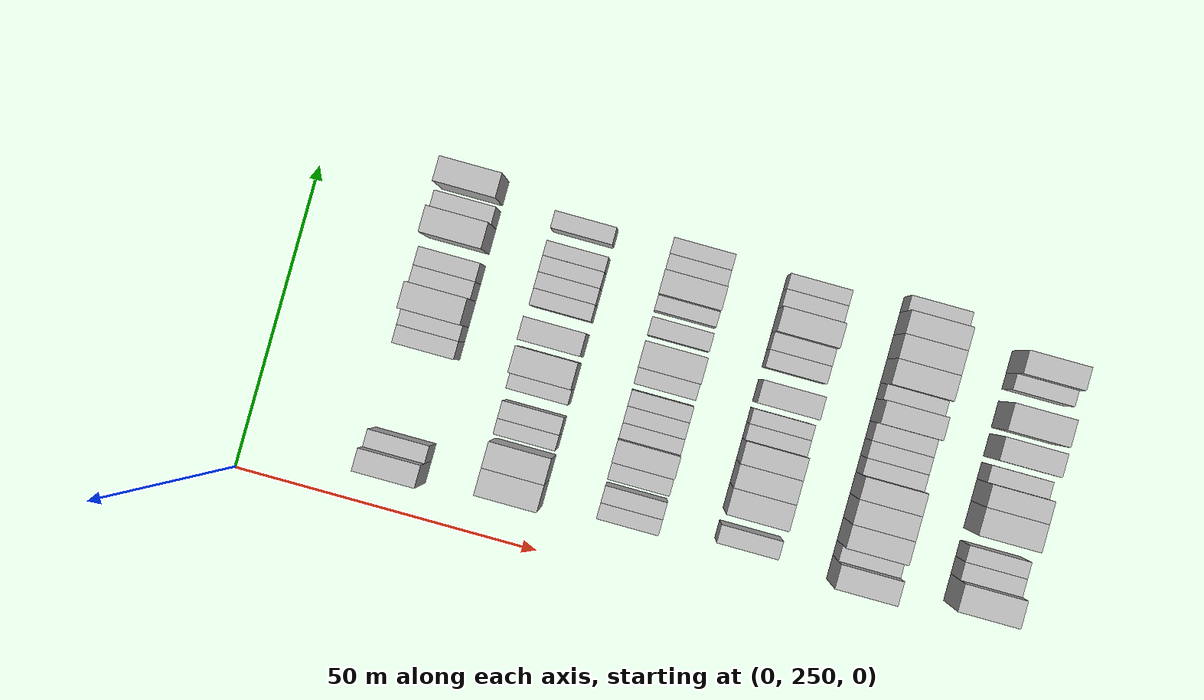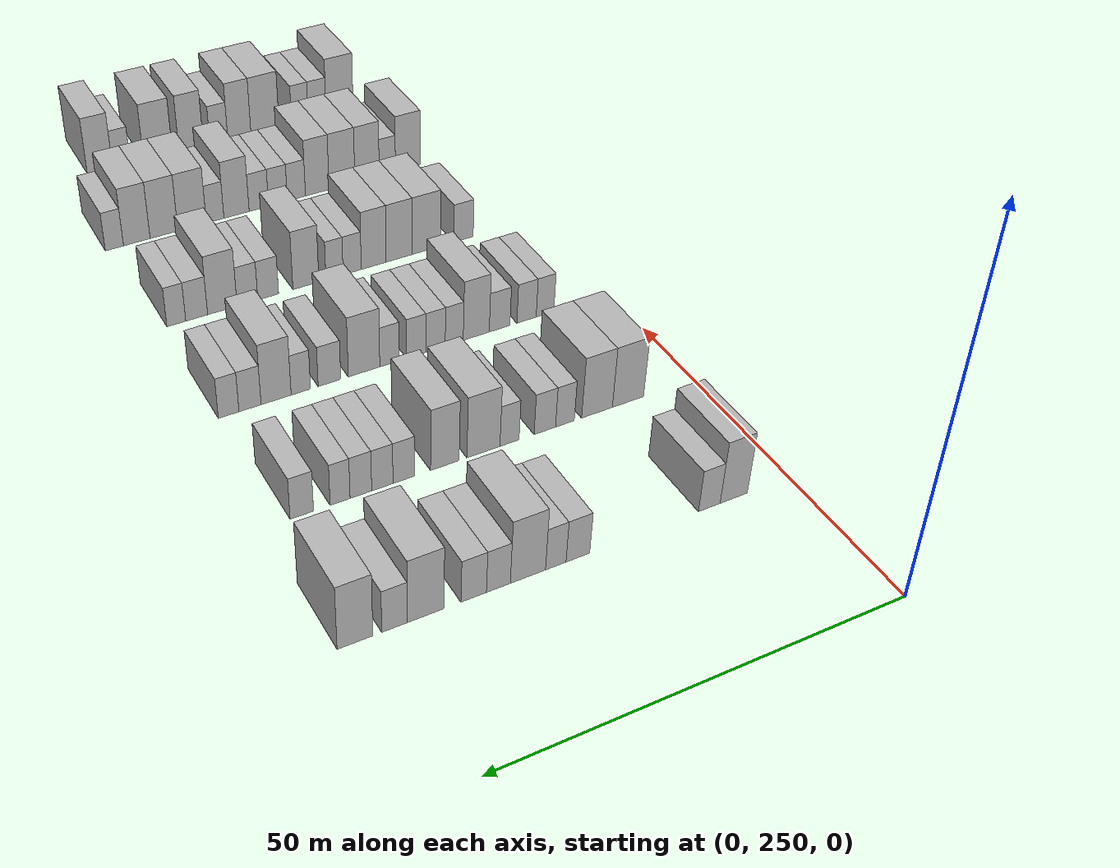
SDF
<sdf version="1.6">
 <world name="default">
  <model name="building_148">
   <static>1</static>
   <pose>25.0000 257.5015 0 0.000000 0.000000 0.000000</pose>
   <link name="link">
    <pose>0 0 4.50 0 0 0</pose>
    <collision name="collision"><geometry><box><size>10.0000 3.6492 9.0000</size></box></geometry></collision>
    <visual name="visual">
     <cast_shadows>0</cast_shadows>
     <geometry><box><size>10.0000 3.6492 9.0000</size></box></geometry>
     <material>
      <script>
       <uri>model://HANNAS_wall/materials/scripts</uri>
       <uri>model://HANNAS_wall/materials/textures</uri>
       <name>vrc/HANNAS_wall</name>
      </script>
     </material>
    </visual>
   </link>
  </model>
  <model name="building_149">
   <static>1</static>
   <pose>25.0000 260.7562 0 0.000000 0.000000 0.000000</pose>
   <link name="link">
    <pose>0 0 3.00 0 0 0</pose>
    <collision name="collision"><geometry><box><size>10.0000 2.8602 6.0000</size></box></geometry></collision>
    <visual name="visual">
     <cast_shadows>0</cast_shadows>
     <geometry><box><size>10.0000 2.8602 6.0000</size></box></geometry>
     <material>
      <script>
       <uri>model://HANNAS_wall/materials/scripts</uri>
       <uri>model://HANNAS_wall/materials/textures</uri>
       <name>vrc/HANNAS_wall</name>
      </script>
     </material>
    </visual>
   </link>
  </model>
  <model name="building_150">
   <static>1</static>
   <pose>25.0000 277.5762 0 0.000000 0.000000 0.000000</pose>
   <link name="link">
    <pose>0 0 3.00 0 0 0</pose>
    <collision name="collision"><geometry><box><size>10.0000 2.9266 6.0000</size></box></geometry></collision>
    <visual name="visual">
     <cast_shadows>0</cast_shadows>
     <geometry><box><size>10.0000 2.9266 6.0000</size></box></geometry>
     <material>
      <script>
       <uri>model://HANNAS_wall/materials/scripts</uri>
       <uri>model://HANNAS_wall/materials/textures</uri>
       <name>vrc/HANNAS_wall</name>
      </script>
     </material>
    </visual>
   </link>
  </model>
  <model name="building_151">
   <static>1</static>
   <pose>25.0000 280.2973 0 0.000000 0.000000 0.000000</pose>
   <link name="link">
    <pose>0 0 3.00 0 0 0</pose>
    <collision name="collision"><geometry><box><size>10.0000 2.5155 6.0000</size></box></geometry></collision>
    <visual name="visual">
     <cast_shadows>0</cast_shadows>
     <geometry><box><size>10.0000 2.5155 6.0000</size></box></geometry>
     <material>
      <script>
       <uri>model://HANNAS_wall/materials/scripts</uri>
       <uri>model://HANNAS_wall/materials/textures</uri>
       <name>vrc/HANNAS_wall</name>
      </script>
     </material>
    </visual>
   </link>
  </model>
  <model name="building_152">
   <static>1</static>
   <pose>25.0000 283.6808 0 0.000000 0.000000 0.000000</pose>
   <link name="link">
    <pose>0 0 4.50 0 0 0</pose>
    <collision name="collision"><geometry><box><size>10.0000 4.2517 9.0000</size></box></geometry></collision>
    <visual name="visual">
     <cast_shadows>0</cast_shadows>
     <geometry><box><size>10.0000 4.2517 9.0000</size></box></geometry>
     <material>
      <script>
       <uri>model://HANNAS_wall/materials/scripts</uri>
       <uri>model://HANNAS_wall/materials/textures</uri>
       <name>vrc/HANNAS_wall</name>
      </script>
     </material>
    </visual>
   </link>
  </model>
  <model name="building_153">
   <static>1</static>
   <pose>25.0000 287.2295 0 0.000000 0.000000 0.000000</pose>
   <link name="link">
    <pose>0 0 3.00 0 0 0</pose>
    <collision name="collision"><geometry><box><size>10.0000 2.8457 6.0000</size></box></geometry></collision>
    <visual name="visual">
     <cast_shadows>0</cast_shadows>
     <geometry><box><size>10.0000 2.8457 6.0000</size></box></geometry>
     <material>
      <script>
       <uri>model://HANNAS_wall/materials/scripts</uri>
       <uri>model://HANNAS_wall/materials/textures</uri>
       <name>vrc/HANNAS_wall</name>
      </script>
     </material>
    </visual>
   </link>
  </model>
  <model name="building_154">
   <static>1</static>
   <pose>25.0000 290.1488 0 0.000000 0.000000 0.000000</pose>
   <link name="link">
    <pose>0 0 3.00 0 0 0</pose>
    <collision name="collision"><geometry><box><size>10.0000 2.9929 6.0000</size></box></geometry></collision>
    <visual name="visual">
     <cast_shadows>0</cast_shadows>
     <geometry><box><size>10.0000 2.9929 6.0000</size></box></geometry>
     <material>
      <script>
       <uri>model://HANNAS_wall/materials/scripts</uri>
       <uri>model://HANNAS_wall/materials/textures</uri>
       <name>vrc/HANNAS_wall</name>
      </script>
     </material>
    </visual>
   </link>
  </model>
  <model name="building_155">
   <static>1</static>
   <pose>25.0000 295.7564 0 0.000000 0.000000 0.000000</pose>
   <link name="link">
    <pose>0 0 4.50 0 0 0</pose>
    <collision name="collision"><geometry><box><size>10.0000 4.2221 9.0000</size></box></geometry></collision>
    <visual name="visual">
     <cast_shadows>0</cast_shadows>
     <geometry><box><size>10.0000 4.2221 9.0000</size></box></geometry>
     <material>
      <script>
       <uri>model://HANNAS_wall/materials/scripts</uri>
       <uri>model://HANNAS_wall/materials/textures</uri>
       <name>vrc/HANNAS_wall</name>
      </script>
     </material>
    </visual>
   </link>
  </model>
  <model name="building_156">
   <static>1</static>
   <pose>25.0000 299.3044 0 0.000000 0.000000 0.000000</pose>
   <link name="link">
    <pose>0 0 3.00 0 0 0</pose>
    <collision name="collision"><geometry><box><size>10.0000 2.8740 6.0000</size></box></geometry></collision>
    <visual name="visual">
     <cast_shadows>0</cast_shadows>
     <geometry><box><size>10.0000 2.8740 6.0000</size></box></geometry>
     <material>
      <script>
       <uri>model://HANNAS_wall/materials/scripts</uri>
       <uri>model://HANNAS_wall/materials/textures</uri>
       <name>vrc/HANNAS_wall</name>
      </script>
     </material>
    </visual>
   </link>
  </model>
  <model name="building_157">
   <static>1</static>
   <pose>25.0000 303.7312 0 0.000000 0.000000 0.000000</pose>
   <link name="link">
    <pose>0 0 4.50 0 0 0</pose>
    <collision name="collision"><geometry><box><size>10.0000 3.9795 9.0000</size></box></geometry></collision>
    <visual name="visual">
     <cast_shadows>0</cast_shadows>
     <geometry><box><size>10.0000 3.9795 9.0000</size></box></geometry>
     <material>
      <script>
       <uri>model://HANNAS_wall/materials/scripts</uri>
       <uri>model://HANNAS_wall/materials/textures</uri>
       <name>vrc/HANNAS_wall</name>
      </script>
     </material>
    </visual>
   </link>
  </model>
  <model name="building_321">
   <static>1</static>
   <pose>44.0000 259.2529 0 0.000000 0.000000 0.000000</pose>
   <link name="link">
    <pose>0 0 4.50 0 0 0</pose>
    <collision name="collision"><geometry><box><size>10.0000 4.3447 9.0000</size></box></geometry></collision>
    <visual name="visual">
     <cast_shadows>0</cast_shadows>
     <geometry><box><size>10.0000 4.3447 9.0000</size></box></geometry>
     <material>
      <script>
       <uri>model://HANNAS_wall/materials/scripts</uri>
       <uri>model://HANNAS_wall/materials/textures</uri>
       <name>vrc/HANNAS_wall</name>
      </script>
     </material>
    </visual>
   </link>
  </model>
  <model name="building_322">
   <static>1</static>
   <pose>44.0000 263.5363 0 0.000000 0.000000 0.000000</pose>
   <link name="link">
    <pose>0 0 4.50 0 0 0</pose>
    <collision name="collision"><geometry><box><size>10.0000 4.2221 9.0000</size></box></geometry></collision>
    <visual name="visual">
     <cast_shadows>0</cast_shadows>
     <geometry><box><size>10.0000 4.2221 9.0000</size></box></geometry>
     <material>
      <script>
       <uri>model://HANNAS_wall/materials/scripts</uri>
       <uri>model://HANNAS_wall/materials/textures</uri>
       <name>vrc/HANNAS_wall</name>
      </script>
     </material>
    </visual>
   </link>
  </model>
  <model name="building_323">
   <static>1</static>
   <pose>44.0000 267.9140 0 0.000000 0.000000 0.000000</pose>
   <link name="link">
    <pose>0 0 3.00 0 0 0</pose>
    <collision name="collision"><geometry><box><size>10.0000 2.5334 6.0000</size></box></geometry></collision>
    <visual name="visual">
     <cast_shadows>0</cast_shadows>
     <geometry><box><size>10.0000 2.5334 6.0000</size></box></geometry>
     <material>
      <script>
       <uri>model://HANNAS_wall/materials/scripts</uri>
       <uri>model://HANNAS_wall/materials/textures</uri>
       <name>vrc/HANNAS_wall</name>
      </script>
     </material>
    </visual>
   </link>
  </model>
  <model name="building_324">
   <static>1</static>
   <pose>44.0000 270.6106 0 0.000000 0.000000 0.000000</pose>
   <link name="link">
    <pose>0 0 3.00 0 0 0</pose>
    <collision name="collision"><geometry><box><size>10.0000 2.8597 6.0000</size></box></geometry></collision>
    <visual name="visual">
     <cast_shadows>0</cast_shadows>
     <geometry><box><size>10.0000 2.8597 6.0000</size></box></geometry>
     <material>
      <script>
       <uri>model://HANNAS_wall/materials/scripts</uri>
       <uri>model://HANNAS_wall/materials/textures</uri>
       <name>vrc/HANNAS_wall</name>
      </script>
     </material>
    </visual>
   </link>
  </model>
  <model name="building_325">
   <static>1</static>
   <pose>44.0000 275.2958 0 0.000000 0.000000 0.000000</pose>
   <link name="link">
    <pose>0 0 3.00 0 0 0</pose>
    <collision name="collision"><geometry><box><size>10.0000 2.5107 6.0000</size></box></geometry></collision>
    <visual name="visual">
     <cast_shadows>0</cast_shadows>
     <geometry><box><size>10.0000 2.5107 6.0000</size></box></geometry>
     <material>
      <script>
       <uri>model://HANNAS_wall/materials/scripts</uri>
       <uri>model://HANNAS_wall/materials/textures</uri>
       <name>vrc/HANNAS_wall</name>
      </script>
     </material>
    </visual>
   </link>
  </model>
  <model name="building_326">
   <static>1</static>
   <pose>44.0000 278.6974 0 0.000000 0.000000 0.000000</pose>
   <link name="link">
    <pose>0 0 4.50 0 0 0</pose>
    <collision name="collision"><geometry><box><size>10.0000 4.2926 9.0000</size></box></geometry></collision>
    <visual name="visual">
     <cast_shadows>0</cast_shadows>
     <geometry><box><size>10.0000 4.2926 9.0000</size></box></geometry>
     <material>
      <script>
       <uri>model://HANNAS_wall/materials/scripts</uri>
       <uri>model://HANNAS_wall/materials/textures</uri>
       <name>vrc/HANNAS_wall</name>
      </script>
     </material>
    </visual>
   </link>
  </model>
  <model name="building_327">
   <static>1</static>
   <pose>44.0000 283.6634 0 0.000000 0.000000 0.000000</pose>
   <link name="link">
    <pose>0 0 4.50 0 0 0</pose>
    <collision name="collision"><geometry><box><size>10.0000 3.6393 9.0000</size></box></geometry></collision>
    <visual name="visual">
     <cast_shadows>0</cast_shadows>
     <geometry><box><size>10.0000 3.6393 9.0000</size></box></geometry>
     <material>
      <script>
       <uri>model://HANNAS_wall/materials/scripts</uri>
       <uri>model://HANNAS_wall/materials/textures</uri>
       <name>vrc/HANNAS_wall</name>
      </script>
     </material>
    </visual>
   </link>
  </model>
  <model name="building_328">
   <static>1</static>
   <pose>44.0000 288.8398 0 0.000000 0.000000 0.000000</pose>
   <link name="link">
    <pose>0 0 3.00 0 0 0</pose>
    <collision name="collision"><geometry><box><size>10.0000 2.7134 6.0000</size></box></geometry></collision>
    <visual name="visual">
     <cast_shadows>0</cast_shadows>
     <geometry><box><size>10.0000 2.7134 6.0000</size></box></geometry>
     <material>
      <script>
       <uri>model://HANNAS_wall/materials/scripts</uri>
       <uri>model://HANNAS_wall/materials/textures</uri>
       <name>vrc/HANNAS_wall</name>
      </script>
     </material>
    </visual>
   </link>
  </model>
  <model name="building_329">
   <static>1</static>
   <pose>44.0000 291.5137 0 0.000000 0.000000 0.000000</pose>
   <link name="link">
    <pose>0 0 3.00 0 0 0</pose>
    <collision name="collision"><geometry><box><size>10.0000 2.6345 6.0000</size></box></geometry></collision>
    <visual name="visual">
     <cast_shadows>0</cast_shadows>
     <geometry><box><size>10.0000 2.6345 6.0000</size></box></geometry>
     <material>
      <script>
       <uri>model://HANNAS_wall/materials/scripts</uri>
       <uri>model://HANNAS_wall/materials/textures</uri>
       <name>vrc/HANNAS_wall</name>
      </script>
     </material>
    </visual>
   </link>
  </model>
  <model name="building_330">
   <static>1</static>
   <pose>44.0000 294.1527 0 0.000000 0.000000 0.000000</pose>
   <link name="link">
    <pose>0 0 3.00 0 0 0</pose>
    <collision name="collision"><geometry><box><size>10.0000 2.6435 6.0000</size></box></geometry></collision>
    <visual name="visual">
     <cast_shadows>0</cast_shadows>
     <geometry><box><size>10.0000 2.6435 6.0000</size></box></geometry>
     <material>
      <script>
       <uri>model://HANNAS_wall/materials/scripts</uri>
       <uri>model://HANNAS_wall/materials/textures</uri>
       <name>vrc/HANNAS_wall</name>
      </script>
     </material>
    </visual>
   </link>
  </model>
  <model name="building_331">
   <static>1</static>
   <pose>44.0000 296.6825 0 0.000000 0.000000 0.000000</pose>
   <link name="link">
    <pose>0 0 3.00 0 0 0</pose>
    <collision name="collision"><geometry><box><size>10.0000 2.4160 6.0000</size></box></geometry></collision>
    <visual name="visual">
     <cast_shadows>0</cast_shadows>
     <geometry><box><size>10.0000 2.4160 6.0000</size></box></geometry>
     <material>
      <script>
       <uri>model://HANNAS_wall/materials/scripts</uri>
       <uri>model://HANNAS_wall/materials/textures</uri>
       <name>vrc/HANNAS_wall</name>
      </script>
     </material>
    </visual>
   </link>
  </model>
  <model name="building_332">
   <static>1</static>
   <pose>44.0000 301.2896 0 0.000000 0.000000 0.000000</pose>
   <link name="link">
    <pose>0 0 3.00 0 0 0</pose>
    <collision name="collision"><geometry><box><size>10.0000 2.7981 6.0000</size></box></geometry></collision>
    <visual name="visual">
     <cast_shadows>0</cast_shadows>
     <geometry><box><size>10.0000 2.7981 6.0000</size></box></geometry>
     <material>
      <script>
       <uri>model://HANNAS_wall/materials/scripts</uri>
       <uri>model://HANNAS_wall/materials/textures</uri>
       <name>vrc/HANNAS_wall</name>
      </script>
     </material>
    </visual>
   </link>
  </model>
  <model name="building_496">
   <static>1</static>
   <pose>63.0000 259.5628 0 0.000000 0.000000 0.000000</pose>
   <link name="link">
    <pose>0 0 3.00 0 0 0</pose>
    <collision name="collision"><geometry><box><size>10.0000 2.5678 6.0000</size></box></geometry></collision>
    <visual name="visual">
     <cast_shadows>0</cast_shadows>
     <geometry><box><size>10.0000 2.5678 6.0000</size></box></geometry>
     <material>
      <script>
       <uri>model://HANNAS_wall/materials/scripts</uri>
       <uri>model://HANNAS_wall/materials/textures</uri>
       <name>vrc/HANNAS_wall</name>
      </script>
     </material>
    </visual>
   </link>
  </model>
  <model name="building_497">
   <static>1</static>
   <pose>63.0000 262.2396 0 0.000000 0.000000 0.000000</pose>
   <link name="link">
    <pose>0 0 3.00 0 0 0</pose>
    <collision name="collision"><geometry><box><size>10.0000 2.7859 6.0000</size></box></geometry></collision>
    <visual name="visual">
     <cast_shadows>0</cast_shadows>
     <geometry><box><size>10.0000 2.7859 6.0000</size></box></geometry>
     <material>
      <script>
       <uri>model://HANNAS_wall/materials/scripts</uri>
       <uri>model://HANNAS_wall/materials/textures</uri>
       <name>vrc/HANNAS_wall</name>
      </script>
     </material>
    </visual>
   </link>
  </model>
  <model name="building_498">
   <static>1</static>
   <pose>63.0000 266.1050 0 0.000000 0.000000 0.000000</pose>
   <link name="link">
    <pose>0 0 3.00 0 0 0</pose>
    <collision name="collision"><geometry><box><size>10.0000 2.9450 6.0000</size></box></geometry></collision>
    <visual name="visual">
     <cast_shadows>0</cast_shadows>
     <geometry><box><size>10.0000 2.9450 6.0000</size></box></geometry>
     <material>
      <script>
       <uri>model://HANNAS_wall/materials/scripts</uri>
       <uri>model://HANNAS_wall/materials/textures</uri>
       <name>vrc/HANNAS_wall</name>
      </script>
     </material>
    </visual>
   </link>
  </model>
  <model name="building_499">
   <static>1</static>
   <pose>63.0000 269.4118 0 0.000000 0.000000 0.000000</pose>
   <link name="link">
    <pose>0 0 4.50 0 0 0</pose>
    <collision name="collision"><geometry><box><size>10.0000 3.6686 9.0000</size></box></geometry></collision>
    <visual name="visual">
     <cast_shadows>0</cast_shadows>
     <geometry><box><size>10.0000 3.6686 9.0000</size></box></geometry>
     <material>
      <script>
       <uri>model://HANNAS_wall/materials/scripts</uri>
       <uri>model://HANNAS_wall/materials/textures</uri>
       <name>vrc/HANNAS_wall</name>
      </script>
     </material>
    </visual>
   </link>
  </model>
  <model name="building_500">
   <static>1</static>
   <pose>63.0000 272.5042 0 0.000000 0.000000 0.000000</pose>
   <link name="link">
    <pose>0 0 3.00 0 0 0</pose>
    <collision name="collision"><geometry><box><size>10.0000 2.5163 6.0000</size></box></geometry></collision>
    <visual name="visual">
     <cast_shadows>0</cast_shadows>
     <geometry><box><size>10.0000 2.5163 6.0000</size></box></geometry>
     <material>
      <script>
       <uri>model://HANNAS_wall/materials/scripts</uri>
       <uri>model://HANNAS_wall/materials/textures</uri>
       <name>vrc/HANNAS_wall</name>
      </script>
     </material>
    </visual>
   </link>
  </model>
  <model name="building_501">
   <static>1</static>
   <pose>63.0000 275.1036 0 0.000000 0.000000 0.000000</pose>
   <link name="link">
    <pose>0 0 3.00 0 0 0</pose>
    <collision name="collision"><geometry><box><size>10.0000 2.6824 6.0000</size></box></geometry></collision>
    <visual name="visual">
     <cast_shadows>0</cast_shadows>
     <geometry><box><size>10.0000 2.6824 6.0000</size></box></geometry>
     <material>
      <script>
       <uri>model://HANNAS_wall/materials/scripts</uri>
       <uri>model://HANNAS_wall/materials/textures</uri>
       <name>vrc/HANNAS_wall</name>
      </script>
     </material>
    </visual>
   </link>
  </model>
  <model name="building_502">
   <static>1</static>
   <pose>63.0000 277.7549 0 0.000000 0.000000 0.000000</pose>
   <link name="link">
    <pose>0 0 3.00 0 0 0</pose>
    <collision name="collision"><geometry><box><size>10.0000 2.6201 6.0000</size></box></geometry></collision>
    <visual name="visual">
     <cast_shadows>0</cast_shadows>
     <geometry><box><size>10.0000 2.6201 6.0000</size></box></geometry>
     <material>
      <script>
       <uri>model://HANNAS_wall/materials/scripts</uri>
       <uri>model://HANNAS_wall/materials/textures</uri>
       <name>vrc/HANNAS_wall</name>
      </script>
     </material>
    </visual>
   </link>
  </model>
  <model name="building_503">
   <static>1</static>
   <pose>63.0000 281.3832 0 0.000000 0.000000 0.000000</pose>
   <link name="link">
    <pose>0 0 3.00 0 0 0</pose>
    <collision name="collision"><geometry><box><size>10.0000 2.6367 6.0000</size></box></geometry></collision>
    <visual name="visual">
     <cast_shadows>0</cast_shadows>
     <geometry><box><size>10.0000 2.6367 6.0000</size></box></geometry>
     <material>
      <script>
       <uri>model://HANNAS_wall/materials/scripts</uri>
       <uri>model://HANNAS_wall/materials/textures</uri>
       <name>vrc/HANNAS_wall</name>
      </script>
     </material>
    </visual>
   </link>
  </model>
  <model name="building_504">
   <static>1</static>
   <pose>63.0000 284.8035 0 0.000000 0.000000 0.000000</pose>
   <link name="link">
    <pose>0 0 4.50 0 0 0</pose>
    <collision name="collision"><geometry><box><size>10.0000 4.2038 9.0000</size></box></geometry></collision>
    <visual name="visual">
     <cast_shadows>0</cast_shadows>
     <geometry><box><size>10.0000 4.2038 9.0000</size></box></geometry>
     <material>
      <script>
       <uri>model://HANNAS_wall/materials/scripts</uri>
       <uri>model://HANNAS_wall/materials/textures</uri>
       <name>vrc/HANNAS_wall</name>
      </script>
     </material>
    </visual>
   </link>
  </model>
  <model name="building_505">
   <static>1</static>
   <pose>63.0000 289.3910 0 0.000000 0.000000 0.000000</pose>
   <link name="link">
    <pose>0 0 3.00 0 0 0</pose>
    <collision name="collision"><geometry><box><size>10.0000 2.9711 6.0000</size></box></geometry></collision>
    <visual name="visual">
     <cast_shadows>0</cast_shadows>
     <geometry><box><size>10.0000 2.9711 6.0000</size></box></geometry>
     <material>
      <script>
       <uri>model://HANNAS_wall/materials/scripts</uri>
       <uri>model://HANNAS_wall/materials/textures</uri>
       <name>vrc/HANNAS_wall</name>
      </script>
     </material>
    </visual>
   </link>
  </model>
  <model name="building_506">
   <static>1</static>
   <pose>63.0000 293.1320 0 0.000000 0.000000 0.000000</pose>
   <link name="link">
    <pose>0 0 3.00 0 0 0</pose>
    <collision name="collision"><geometry><box><size>10.0000 2.5109 6.0000</size></box></geometry></collision>
    <visual name="visual">
     <cast_shadows>0</cast_shadows>
     <geometry><box><size>10.0000 2.5109 6.0000</size></box></geometry>
     <material>
      <script>
       <uri>model://HANNAS_wall/materials/scripts</uri>
       <uri>model://HANNAS_wall/materials/textures</uri>
       <name>vrc/HANNAS_wall</name>
      </script>
     </material>
    </visual>
   </link>
  </model>
  <model name="building_507">
   <static>1</static>
   <pose>63.0000 296.3166 0 0.000000 0.000000 0.000000</pose>
   <link name="link">
    <pose>0 0 4.50 0 0 0</pose>
    <collision name="collision"><geometry><box><size>10.0000 3.8584 9.0000</size></box></geometry></collision>
    <visual name="visual">
     <cast_shadows>0</cast_shadows>
     <geometry><box><size>10.0000 3.8584 9.0000</size></box></geometry>
     <material>
      <script>
       <uri>model://HANNAS_wall/materials/scripts</uri>
       <uri>model://HANNAS_wall/materials/textures</uri>
       <name>vrc/HANNAS_wall</name>
      </script>
     </material>
    </visual>
   </link>
  </model>
  <model name="building_508">
   <static>1</static>
   <pose>63.0000 299.6478 0 0.000000 0.000000 0.000000</pose>
   <link name="link">
    <pose>0 0 3.00 0 0 0</pose>
    <collision name="collision"><geometry><box><size>10.0000 2.8040 6.0000</size></box></geometry></collision>
    <visual name="visual">
     <cast_shadows>0</cast_shadows>
     <geometry><box><size>10.0000 2.8040 6.0000</size></box></geometry>
     <material>
      <script>
       <uri>model://HANNAS_wall/materials/scripts</uri>
       <uri>model://HANNAS_wall/materials/textures</uri>
       <name>vrc/HANNAS_wall</name>
      </script>
     </material>
    </visual>
   </link>
  </model>
  <model name="building_509">
   <static>1</static>
   <pose>63.0000 302.3496 0 0.000000 0.000000 0.000000</pose>
   <link name="link">
    <pose>0 0 3.00 0 0 0</pose>
    <collision name="collision"><geometry><box><size>10.0000 2.5996 6.0000</size></box></geometry></collision>
    <visual name="visual">
     <cast_shadows>0</cast_shadows>
     <geometry><box><size>10.0000 2.5996 6.0000</size></box></geometry>
     <material>
      <script>
       <uri>model://HANNAS_wall/materials/scripts</uri>
       <uri>model://HANNAS_wall/materials/textures</uri>
       <name>vrc/HANNAS_wall</name>
      </script>
     </material>
    </visual>
   </link>
  </model>
  <model name="building_652">
   <static>1</static>
   <pose>82.0000 261.1479 0 0.000000 0.000000 0.000000</pose>
   <link name="link">
    <pose>0 0 3.00 0 0 0</pose>
    <collision name="collision"><geometry><box><size>10.0000 2.9452 6.0000</size></box></geometry></collision>
    <visual name="visual">
     <cast_shadows>0</cast_shadows>
     <geometry><box><size>10.0000 2.9452 6.0000</size></box></geometry>
     <material>
      <script>
       <uri>model://HANNAS_wall/materials/scripts</uri>
       <uri>model://HANNAS_wall/materials/textures</uri>
       <name>vrc/HANNAS_wall</name>
      </script>
     </material>
    </visual>
   </link>
  </model>
  <model name="building_653">
   <static>1</static>
   <pose>82.0000 266.7201 0 0.000000 0.000000 0.000000</pose>
   <link name="link">
    <pose>0 0 4.50 0 0 0</pose>
    <collision name="collision"><geometry><box><size>10.0000 4.1993 9.0000</size></box></geometry></collision>
    <visual name="visual">
     <cast_shadows>0</cast_shadows>
     <geometry><box><size>10.0000 4.1993 9.0000</size></box></geometry>
     <material>
      <script>
       <uri>model://HANNAS_wall/materials/scripts</uri>
       <uri>model://HANNAS_wall/materials/textures</uri>
       <name>vrc/HANNAS_wall</name>
      </script>
     </material>
    </visual>
   </link>
  </model>
  <model name="building_654">
   <static>1</static>
   <pose>82.0000 270.7343 0 0.000000 0.000000 0.000000</pose>
   <link name="link">
    <pose>0 0 4.50 0 0 0</pose>
    <collision name="collision"><geometry><box><size>10.0000 3.8291 9.0000</size></box></geometry></collision>
    <visual name="visual">
     <cast_shadows>0</cast_shadows>
     <geometry><box><size>10.0000 3.8291 9.0000</size></box></geometry>
     <material>
      <script>
       <uri>model://HANNAS_wall/materials/scripts</uri>
       <uri>model://HANNAS_wall/materials/textures</uri>
       <name>vrc/HANNAS_wall</name>
      </script>
     </material>
    </visual>
   </link>
  </model>
  <model name="building_655">
   <static>1</static>
   <pose>82.0000 274.4513 0 0.000000 0.000000 0.000000</pose>
   <link name="link">
    <pose>0 0 4.50 0 0 0</pose>
    <collision name="collision"><geometry><box><size>10.0000 3.6048 9.0000</size></box></geometry></collision>
    <visual name="visual">
     <cast_shadows>0</cast_shadows>
     <geometry><box><size>10.0000 3.6048 9.0000</size></box></geometry>
     <material>
      <script>
       <uri>model://HANNAS_wall/materials/scripts</uri>
       <uri>model://HANNAS_wall/materials/textures</uri>
       <name>vrc/HANNAS_wall</name>
      </script>
     </material>
    </visual>
   </link>
  </model>
  <model name="building_656">
   <static>1</static>
   <pose>82.0000 277.5606 0 0.000000 0.000000 0.000000</pose>
   <link name="link">
    <pose>0 0 3.00 0 0 0</pose>
    <collision name="collision"><geometry><box><size>10.0000 2.6139 6.0000</size></box></geometry></collision>
    <visual name="visual">
     <cast_shadows>0</cast_shadows>
     <geometry><box><size>10.0000 2.6139 6.0000</size></box></geometry>
     <material>
      <script>
       <uri>model://HANNAS_wall/materials/scripts</uri>
       <uri>model://HANNAS_wall/materials/textures</uri>
       <name>vrc/HANNAS_wall</name>
      </script>
     </material>
    </visual>
   </link>
  </model>
  <model name="building_657">
   <static>1</static>
   <pose>82.0000 280.0922 0 0.000000 0.000000 0.000000</pose>
   <link name="link">
    <pose>0 0 3.00 0 0 0</pose>
    <collision name="collision"><geometry><box><size>10.0000 2.4494 6.0000</size></box></geometry></collision>
    <visual name="visual">
     <cast_shadows>0</cast_shadows>
     <geometry><box><size>10.0000 2.4494 6.0000</size></box></geometry>
     <material>
      <script>
       <uri>model://HANNAS_wall/materials/scripts</uri>
       <uri>model://HANNAS_wall/materials/textures</uri>
       <name>vrc/HANNAS_wall</name>
      </script>
     </material>
    </visual>
   </link>
  </model>
  <model name="building_658">
   <static>1</static>
   <pose>82.0000 284.1435 0 0.000000 0.000000 0.000000</pose>
   <link name="link">
    <pose>0 0 4.50 0 0 0</pose>
    <collision name="collision"><geometry><box><size>10.0000 3.6532 9.0000</size></box></geometry></collision>
    <visual name="visual">
     <cast_shadows>0</cast_shadows>
     <geometry><box><size>10.0000 3.6532 9.0000</size></box></geometry>
     <material>
      <script>
       <uri>model://HANNAS_wall/materials/scripts</uri>
       <uri>model://HANNAS_wall/materials/textures</uri>
       <name>vrc/HANNAS_wall</name>
      </script>
     </material>
    </visual>
   </link>
  </model>
  <model name="building_659">
   <static>1</static>
   <pose>82.0000 289.4063 0 0.000000 0.000000 0.000000</pose>
   <link name="link">
    <pose>0 0 3.00 0 0 0</pose>
    <collision name="collision"><geometry><box><size>10.0000 2.8724 6.0000</size></box></geometry></collision>
    <visual name="visual">
     <cast_shadows>0</cast_shadows>
     <geometry><box><size>10.0000 2.8724 6.0000</size></box></geometry>
     <material>
      <script>
       <uri>model://HANNAS_wall/materials/scripts</uri>
       <uri>model://HANNAS_wall/materials/textures</uri>
       <name>vrc/HANNAS_wall</name>
      </script>
     </material>
    </visual>
   </link>
  </model>
  <model name="building_660">
   <static>1</static>
   <pose>82.0000 292.2632 0 0.000000 0.000000 0.000000</pose>
   <link name="link">
    <pose>0 0 3.00 0 0 0</pose>
    <collision name="collision"><geometry><box><size>10.0000 2.8415 6.0000</size></box></geometry></collision>
    <visual name="visual">
     <cast_shadows>0</cast_shadows>
     <geometry><box><size>10.0000 2.8415 6.0000</size></box></geometry>
     <material>
      <script>
       <uri>model://HANNAS_wall/materials/scripts</uri>
       <uri>model://HANNAS_wall/materials/textures</uri>
       <name>vrc/HANNAS_wall</name>
      </script>
     </material>
    </visual>
   </link>
  </model>
  <model name="building_661">
   <static>1</static>
   <pose>82.0000 295.6807 0 0.000000 0.000000 0.000000</pose>
   <link name="link">
    <pose>0 0 4.50 0 0 0</pose>
    <collision name="collision"><geometry><box><size>10.0000 3.9934 9.0000</size></box></geometry></collision>
    <visual name="visual">
     <cast_shadows>0</cast_shadows>
     <geometry><box><size>10.0000 3.9934 9.0000</size></box></geometry>
     <material>
      <script>
       <uri>model://HANNAS_wall/materials/scripts</uri>
       <uri>model://HANNAS_wall/materials/textures</uri>
       <name>vrc/HANNAS_wall</name>
      </script>
     </material>
    </visual>
   </link>
  </model>
  <model name="building_662">
   <static>1</static>
   <pose>82.0000 299.1421 0 0.000000 0.000000 0.000000</pose>
   <link name="link">
    <pose>0 0 3.00 0 0 0</pose>
    <collision name="collision"><geometry><box><size>10.0000 2.9295 6.0000</size></box></geometry></collision>
    <visual name="visual">
     <cast_shadows>0</cast_shadows>
     <geometry><box><size>10.0000 2.9295 6.0000</size></box></geometry>
     <material>
      <script>
       <uri>model://HANNAS_wall/materials/scripts</uri>
       <uri>model://HANNAS_wall/materials/textures</uri>
       <name>vrc/HANNAS_wall</name>
      </script>
     </material>
    </visual>
   </link>
  </model>
  <model name="building_663">
   <static>1</static>
   <pose>82.0000 301.8620 0 0.000000 0.000000 0.000000</pose>
   <link name="link">
    <pose>0 0 3.00 0 0 0</pose>
    <collision name="collision"><geometry><box><size>10.0000 2.5103 6.0000</size></box></geometry></collision>
    <visual name="visual">
     <cast_shadows>0</cast_shadows>
     <geometry><box><size>10.0000 2.5103 6.0000</size></box></geometry>
     <material>
      <script>
       <uri>model://HANNAS_wall/materials/scripts</uri>
       <uri>model://HANNAS_wall/materials/textures</uri>
       <name>vrc/HANNAS_wall</name>
      </script>
     </material>
    </visual>
   </link>
  </model>
  <model name="building_814">
   <static>1</static>
   <pose>101.0000 260.0461 0 0.000000 0.000000 0.000000</pose>
   <link name="link">
    <pose>0 0 4.50 0 0 0</pose>
    <collision name="collision"><geometry><box><size>10.0000 3.8874 9.0000</size></box></geometry></collision>
    <visual name="visual">
     <cast_shadows>0</cast_shadows>
     <geometry><box><size>10.0000 3.8874 9.0000</size></box></geometry>
     <material>
      <script>
       <uri>model://HANNAS_wall/materials/scripts</uri>
       <uri>model://HANNAS_wall/materials/textures</uri>
       <name>vrc/HANNAS_wall</name>
      </script>
     </material>
    </visual>
   </link>
  </model>
  <model name="building_815">
   <static>1</static>
   <pose>101.0000 263.2635 0 0.000000 0.000000 0.000000</pose>
   <link name="link">
    <pose>0 0 3.00 0 0 0</pose>
    <collision name="collision"><geometry><box><size>10.0000 2.5474 6.0000</size></box></geometry></collision>
    <visual name="visual">
     <cast_shadows>0</cast_shadows>
     <geometry><box><size>10.0000 2.5474 6.0000</size></box></geometry>
     <material>
      <script>
       <uri>model://HANNAS_wall/materials/scripts</uri>
       <uri>model://HANNAS_wall/materials/textures</uri>
       <name>vrc/HANNAS_wall</name>
      </script>
     </material>
    </visual>
   </link>
  </model>
  <model name="building_816">
   <static>1</static>
   <pose>101.0000 266.4295 0 0.000000 0.000000 0.000000</pose>
   <link name="link">
    <pose>0 0 4.50 0 0 0</pose>
    <collision name="collision"><geometry><box><size>10.0000 3.7847 9.0000</size></box></geometry></collision>
    <visual name="visual">
     <cast_shadows>0</cast_shadows>
     <geometry><box><size>10.0000 3.7847 9.0000</size></box></geometry>
     <material>
      <script>
       <uri>model://HANNAS_wall/materials/scripts</uri>
       <uri>model://HANNAS_wall/materials/textures</uri>
       <name>vrc/HANNAS_wall</name>
      </script>
     </material>
    </visual>
   </link>
  </model>
  <model name="building_817">
   <static>1</static>
   <pose>101.0000 270.3054 0 0.000000 0.000000 0.000000</pose>
   <link name="link">
    <pose>0 0 4.50 0 0 0</pose>
    <collision name="collision"><geometry><box><size>10.0000 3.9671 9.0000</size></box></geometry></collision>
    <visual name="visual">
     <cast_shadows>0</cast_shadows>
     <geometry><box><size>10.0000 3.9671 9.0000</size></box></geometry>
     <material>
      <script>
       <uri>model://HANNAS_wall/materials/scripts</uri>
       <uri>model://HANNAS_wall/materials/textures</uri>
       <name>vrc/HANNAS_wall</name>
      </script>
     </material>
    </visual>
   </link>
  </model>
  <model name="building_818">
   <static>1</static>
   <pose>101.0000 274.0908 0 0.000000 0.000000 0.000000</pose>
   <link name="link">
    <pose>0 0 4.50 0 0 0</pose>
    <collision name="collision"><geometry><box><size>10.0000 3.6037 9.0000</size></box></geometry></collision>
    <visual name="visual">
     <cast_shadows>0</cast_shadows>
     <geometry><box><size>10.0000 3.6037 9.0000</size></box></geometry>
     <material>
      <script>
       <uri>model://HANNAS_wall/materials/scripts</uri>
       <uri>model://HANNAS_wall/materials/textures</uri>
       <name>vrc/HANNAS_wall</name>
      </script>
     </material>
    </visual>
   </link>
  </model>
  <model name="building_819">
   <static>1</static>
   <pose>101.0000 277.2584 0 0.000000 0.000000 0.000000</pose>
   <link name="link">
    <pose>0 0 3.00 0 0 0</pose>
    <collision name="collision"><geometry><box><size>10.0000 2.7313 6.0000</size></box></geometry></collision>
    <visual name="visual">
     <cast_shadows>0</cast_shadows>
     <geometry><box><size>10.0000 2.7313 6.0000</size></box></geometry>
     <material>
      <script>
       <uri>model://HANNAS_wall/materials/scripts</uri>
       <uri>model://HANNAS_wall/materials/textures</uri>
       <name>vrc/HANNAS_wall</name>
      </script>
     </material>
    </visual>
   </link>
  </model>
  <model name="building_820">
   <static>1</static>
   <pose>101.0000 280.0263 0 0.000000 0.000000 0.000000</pose>
   <link name="link">
    <pose>0 0 3.00 0 0 0</pose>
    <collision name="collision"><geometry><box><size>10.0000 2.8046 6.0000</size></box></geometry></collision>
    <visual name="visual">
     <cast_shadows>0</cast_shadows>
     <geometry><box><size>10.0000 2.8046 6.0000</size></box></geometry>
     <material>
      <script>
       <uri>model://HANNAS_wall/materials/scripts</uri>
       <uri>model://HANNAS_wall/materials/textures</uri>
       <name>vrc/HANNAS_wall</name>
      </script>
     </material>
    </visual>
   </link>
  </model>
  <model name="building_821">
   <static>1</static>
   <pose>101.0000 282.8722 0 0.000000 0.000000 0.000000</pose>
   <link name="link">
    <pose>0 0 3.00 0 0 0</pose>
    <collision name="collision"><geometry><box><size>10.0000 2.8872 6.0000</size></box></geometry></collision>
    <visual name="visual">
     <cast_shadows>0</cast_shadows>
     <geometry><box><size>10.0000 2.8872 6.0000</size></box></geometry>
     <material>
      <script>
       <uri>model://HANNAS_wall/materials/scripts</uri>
       <uri>model://HANNAS_wall/materials/textures</uri>
       <name>vrc/HANNAS_wall</name>
      </script>
     </material>
    </visual>
   </link>
  </model>
  <model name="building_822">
   <static>1</static>
   <pose>101.0000 286.1627 0 0.000000 0.000000 0.000000</pose>
   <link name="link">
    <pose>0 0 4.50 0 0 0</pose>
    <collision name="collision"><geometry><box><size>10.0000 3.6937 9.0000</size></box></geometry></collision>
    <visual name="visual">
     <cast_shadows>0</cast_shadows>
     <geometry><box><size>10.0000 3.6937 9.0000</size></box></geometry>
     <material>
      <script>
       <uri>model://HANNAS_wall/materials/scripts</uri>
       <uri>model://HANNAS_wall/materials/textures</uri>
       <name>vrc/HANNAS_wall</name>
      </script>
     </material>
    </visual>
   </link>
  </model>
  <model name="building_823">
   <static>1</static>
   <pose>101.0000 289.2841 0 0.000000 0.000000 0.000000</pose>
   <link name="link">
    <pose>0 0 3.00 0 0 0</pose>
    <collision name="collision"><geometry><box><size>10.0000 2.5492 6.0000</size></box></geometry></collision>
    <visual name="visual">
     <cast_shadows>0</cast_shadows>
     <geometry><box><size>10.0000 2.5492 6.0000</size></box></geometry>
     <material>
      <script>
       <uri>model://HANNAS_wall/materials/scripts</uri>
       <uri>model://HANNAS_wall/materials/textures</uri>
       <name>vrc/HANNAS_wall</name>
      </script>
     </material>
    </visual>
   </link>
  </model>
  <model name="building_824">
   <static>1</static>
   <pose>101.0000 292.6028 0 0.000000 0.000000 0.000000</pose>
   <link name="link">
    <pose>0 0 4.50 0 0 0</pose>
    <collision name="collision"><geometry><box><size>10.0000 4.0882 9.0000</size></box></geometry></collision>
    <visual name="visual">
     <cast_shadows>0</cast_shadows>
     <geometry><box><size>10.0000 4.0882 9.0000</size></box></geometry>
     <material>
      <script>
       <uri>model://HANNAS_wall/materials/scripts</uri>
       <uri>model://HANNAS_wall/materials/textures</uri>
       <name>vrc/HANNAS_wall</name>
      </script>
     </material>
    </visual>
   </link>
  </model>
  <model name="building_825">
   <static>1</static>
   <pose>101.0000 296.6230 0 0.000000 0.000000 0.000000</pose>
   <link name="link">
    <pose>0 0 4.50 0 0 0</pose>
    <collision name="collision"><geometry><box><size>10.0000 3.9521 9.0000</size></box></geometry></collision>
    <visual name="visual">
     <cast_shadows>0</cast_shadows>
     <geometry><box><size>10.0000 3.9521 9.0000</size></box></geometry>
     <material>
      <script>
       <uri>model://HANNAS_wall/materials/scripts</uri>
       <uri>model://HANNAS_wall/materials/textures</uri>
       <name>vrc/HANNAS_wall</name>
      </script>
     </material>
    </visual>
   </link>
  </model>
  <model name="building_826">
   <static>1</static>
   <pose>101.0000 300.4655 0 0.000000 0.000000 0.000000</pose>
   <link name="link">
    <pose>0 0 4.50 0 0 0</pose>
    <collision name="collision"><geometry><box><size>10.0000 3.7330 9.0000</size></box></geometry></collision>
    <visual name="visual">
     <cast_shadows>0</cast_shadows>
     <geometry><box><size>10.0000 3.7330 9.0000</size></box></geometry>
     <material>
      <script>
       <uri>model://HANNAS_wall/materials/scripts</uri>
       <uri>model://HANNAS_wall/materials/textures</uri>
       <name>vrc/HANNAS_wall</name>
      </script>
     </material>
    </visual>
   </link>
  </model>
  <model name="building_827">
   <static>1</static>
   <pose>101.0000 303.6001 0 0.000000 0.000000 0.000000</pose>
   <link name="link">
    <pose>0 0 3.00 0 0 0</pose>
    <collision name="collision"><geometry><box><size>10.0000 2.5362 6.0000</size></box></geometry></collision>
    <visual name="visual">
     <cast_shadows>0</cast_shadows>
     <geometry><box><size>10.0000 2.5362 6.0000</size></box></geometry>
     <material>
      <script>
       <uri>model://HANNAS_wall/materials/scripts</uri>
       <uri>model://HANNAS_wall/materials/textures</uri>
       <name>vrc/HANNAS_wall</name>
      </script>
     </material>
    </visual>
   </link>
  </model>
  <model name="building_989">
   <static>1</static>
   <pose>120.0000 261.9940 0 0.000000 0.000000 0.000000</pose>
   <link name="link">
    <pose>0 0 4.50 0 0 0</pose>
    <collision name="collision"><geometry><box><size>10.0000 4.4330 9.0000</size></box></geometry></collision>
    <visual name="visual">
     <cast_shadows>0</cast_shadows>
     <geometry><box><size>10.0000 4.4330 9.0000</size></box></geometry>
     <material>
      <script>
       <uri>model://HANNAS_wall/materials/scripts</uri>
       <uri>model://HANNAS_wall/materials/textures</uri>
       <name>vrc/HANNAS_wall</name>
      </script>
     </material>
    </visual>
   </link>
  </model>
  <model name="building_990">
   <static>1</static>
   <pose>120.0000 265.6777 0 0.000000 0.000000 0.000000</pose>
   <link name="link">
    <pose>0 0 3.00 0 0 0</pose>
    <collision name="collision"><geometry><box><size>10.0000 2.9344 6.0000</size></box></geometry></collision>
    <visual name="visual">
     <cast_shadows>0</cast_shadows>
     <geometry><box><size>10.0000 2.9344 6.0000</size></box></geometry>
     <material>
      <script>
       <uri>model://HANNAS_wall/materials/scripts</uri>
       <uri>model://HANNAS_wall/materials/textures</uri>
       <name>vrc/HANNAS_wall</name>
      </script>
     </material>
    </visual>
   </link>
  </model>
  <model name="building_991">
   <static>1</static>
   <pose>120.0000 268.4884 0 0.000000 0.000000 0.000000</pose>
   <link name="link">
    <pose>0 0 3.00 0 0 0</pose>
    <collision name="collision"><geometry><box><size>10.0000 2.6868 6.0000</size></box></geometry></collision>
    <visual name="visual">
     <cast_shadows>0</cast_shadows>
     <geometry><box><size>10.0000 2.6868 6.0000</size></box></geometry>
     <material>
      <script>
       <uri>model://HANNAS_wall/materials/scripts</uri>
       <uri>model://HANNAS_wall/materials/textures</uri>
       <name>vrc/HANNAS_wall</name>
      </script>
     </material>
    </visual>
   </link>
  </model>
  <model name="building_992">
   <static>1</static>
   <pose>120.0000 274.0758 0 0.000000 0.000000 0.000000</pose>
   <link name="link">
    <pose>0 0 4.50 0 0 0</pose>
    <collision name="collision"><geometry><box><size>10.0000 4.4880 9.0000</size></box></geometry></collision>
    <visual name="visual">
     <cast_shadows>0</cast_shadows>
     <geometry><box><size>10.0000 4.4880 9.0000</size></box></geometry>
     <material>
      <script>
       <uri>model://HANNAS_wall/materials/scripts</uri>
       <uri>model://HANNAS_wall/materials/textures</uri>
       <name>vrc/HANNAS_wall</name>
      </script>
     </material>
    </visual>
   </link>
  </model>
  <model name="building_993">
   <static>1</static>
   <pose>120.0000 278.1388 0 0.000000 0.000000 0.000000</pose>
   <link name="link">
    <pose>0 0 4.50 0 0 0</pose>
    <collision name="collision"><geometry><box><size>10.0000 3.6381 9.0000</size></box></geometry></collision>
    <visual name="visual">
     <cast_shadows>0</cast_shadows>
     <geometry><box><size>10.0000 3.6381 9.0000</size></box></geometry>
     <material>
      <script>
       <uri>model://HANNAS_wall/materials/scripts</uri>
       <uri>model://HANNAS_wall/materials/textures</uri>
       <name>vrc/HANNAS_wall</name>
      </script>
     </material>
    </visual>
   </link>
  </model>
  <model name="building_994">
   <static>1</static>
   <pose>120.0000 281.3490 0 0.000000 0.000000 0.000000</pose>
   <link name="link">
    <pose>0 0 3.00 0 0 0</pose>
    <collision name="collision"><geometry><box><size>10.0000 2.7823 6.0000</size></box></geometry></collision>
    <visual name="visual">
     <cast_shadows>0</cast_shadows>
     <geometry><box><size>10.0000 2.7823 6.0000</size></box></geometry>
     <material>
      <script>
       <uri>model://HANNAS_wall/materials/scripts</uri>
       <uri>model://HANNAS_wall/materials/textures</uri>
       <name>vrc/HANNAS_wall</name>
      </script>
     </material>
    </visual>
   </link>
  </model>
  <model name="building_995">
   <static>1</static>
   <pose>120.0000 285.6189 0 0.000000 0.000000 0.000000</pose>
   <link name="link">
    <pose>0 0 4.50 0 0 0</pose>
    <collision name="collision"><geometry><box><size>10.0000 3.7574 9.0000</size></box></geometry></collision>
    <visual name="visual">
     <cast_shadows>0</cast_shadows>
     <geometry><box><size>10.0000 3.7574 9.0000</size></box></geometry>
     <material>
      <script>
       <uri>model://HANNAS_wall/materials/scripts</uri>
       <uri>model://HANNAS_wall/materials/textures</uri>
       <name>vrc/HANNAS_wall</name>
      </script>
     </material>
    </visual>
   </link>
  </model>
  <model name="building_996">
   <static>1</static>
   <pose>120.0000 290.6858 0 0.000000 0.000000 0.000000</pose>
   <link name="link">
    <pose>0 0 4.50 0 0 0</pose>
    <collision name="collision"><geometry><box><size>10.0000 4.3765 9.0000</size></box></geometry></collision>
    <visual name="visual">
     <cast_shadows>0</cast_shadows>
     <geometry><box><size>10.0000 4.3765 9.0000</size></box></geometry>
     <material>
      <script>
       <uri>model://HANNAS_wall/materials/scripts</uri>
       <uri>model://HANNAS_wall/materials/textures</uri>
       <name>vrc/HANNAS_wall</name>
      </script>
     </material>
    </visual>
   </link>
  </model>
  <model name="building_997">
   <static>1</static>
   <pose>120.0000 296.1874 0 0.000000 0.000000 0.000000</pose>
   <link name="link">
    <pose>0 0 3.00 0 0 0</pose>
    <collision name="collision"><geometry><box><size>10.0000 2.6265 6.0000</size></box></geometry></collision>
    <visual name="visual">
     <cast_shadows>0</cast_shadows>
     <geometry><box><size>10.0000 2.6265 6.0000</size></box></geometry>
     <material>
      <script>
       <uri>model://HANNAS_wall/materials/scripts</uri>
       <uri>model://HANNAS_wall/materials/textures</uri>
       <name>vrc/HANNAS_wall</name>
      </script>
     </material>
    </visual>
   </link>
  </model>
  <model name="building_998">
   <static>1</static>
   <pose>120.0000 299.3709 0 0.000000 0.000000 0.000000</pose>
   <link name="link">
    <pose>0 0 4.50 0 0 0</pose>
    <collision name="collision"><geometry><box><size>10.0000 3.7406 9.0000</size></box></geometry></collision>
    <visual name="visual">
     <cast_shadows>0</cast_shadows>
     <geometry><box><size>10.0000 3.7406 9.0000</size></box></geometry>
     <material>
      <script>
       <uri>model://HANNAS_wall/materials/scripts</uri>
       <uri>model://HANNAS_wall/materials/textures</uri>
       <name>vrc/HANNAS_wall</name>
      </script>
     </material>
    </visual>
   </link>
  </model>
 </world>
</sdf>
